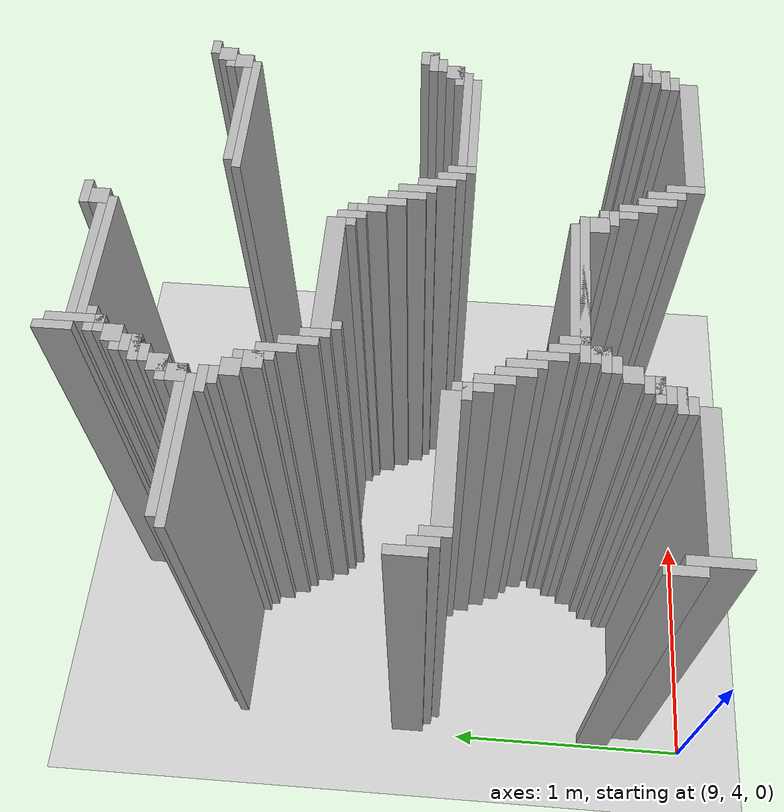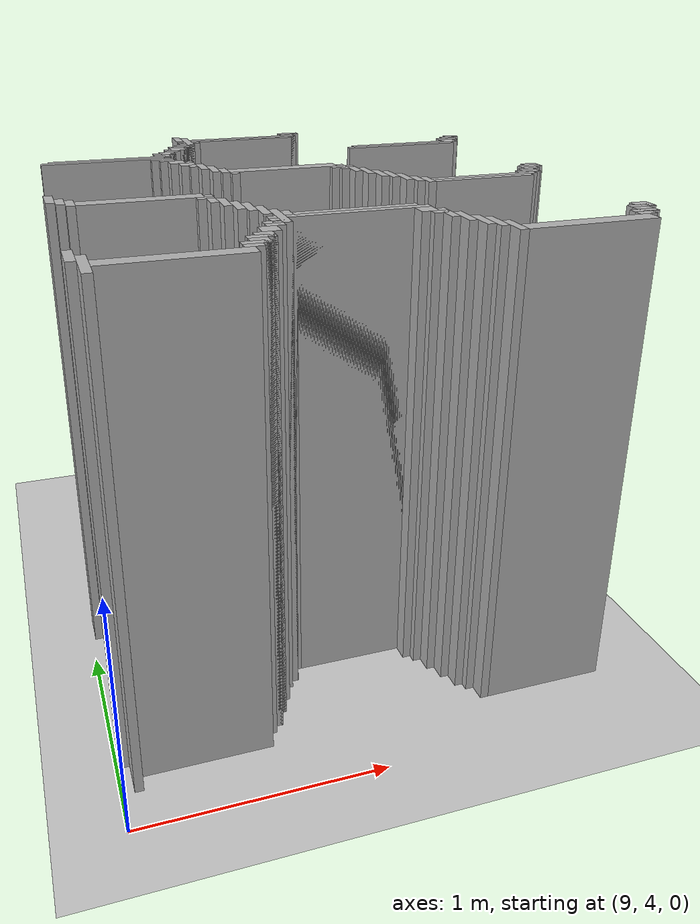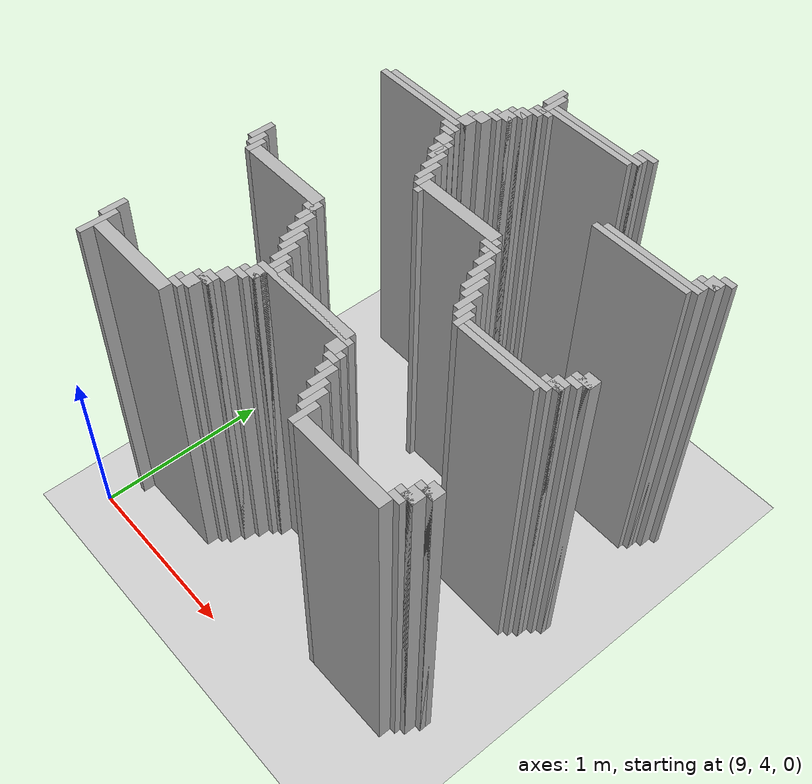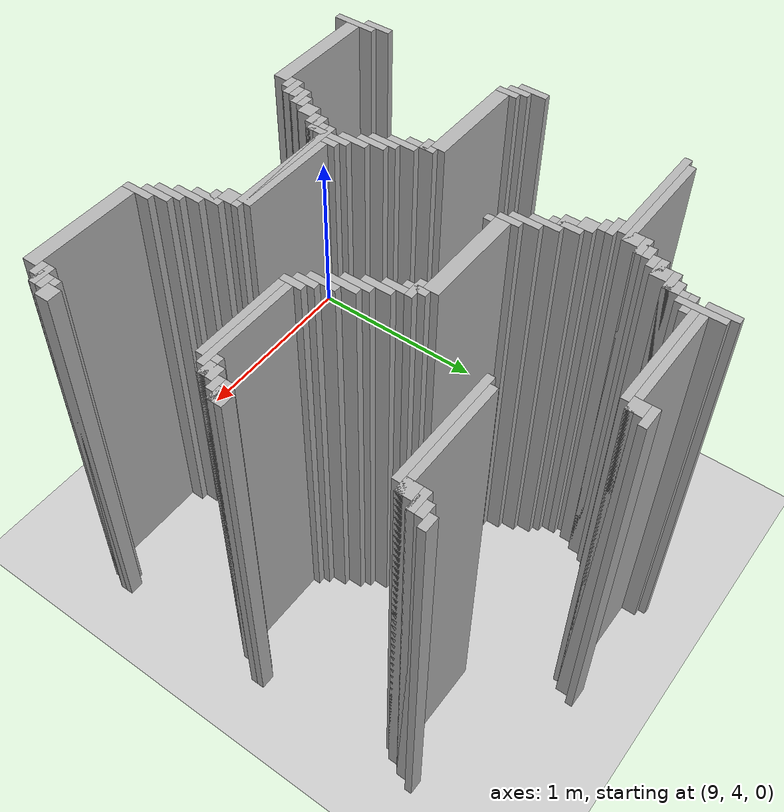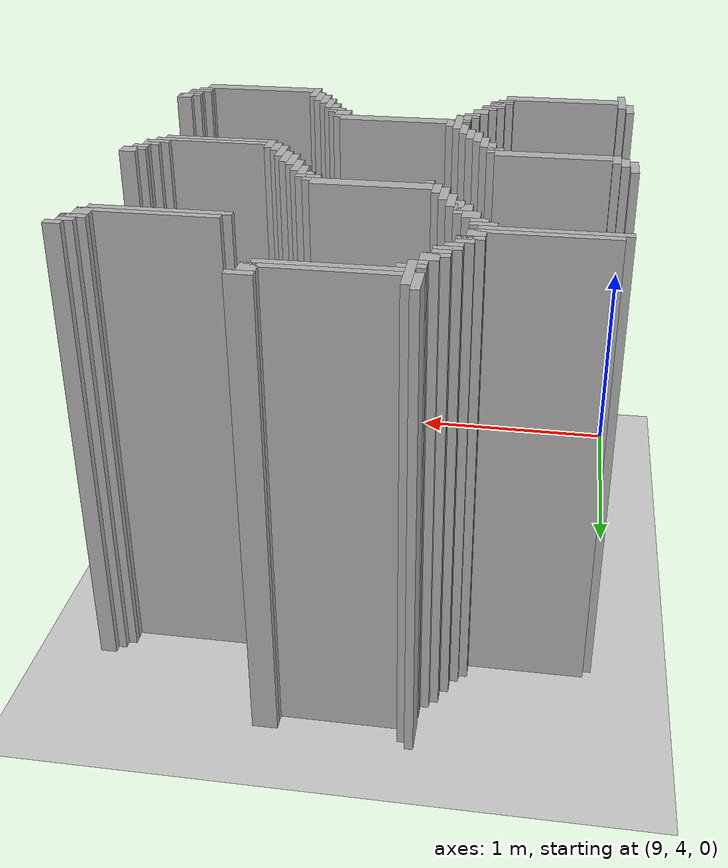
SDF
<sdf version="1.6">
 <world name="slam_world">
  <model name="ground_plane">
   <static>true</static>
   <link name="link">
    <collision name="collision">
     <geometry><plane><normal>0 0 1</normal><size>100 100</size></plane></geometry>
    </collision>
    <visual name="visual">
     <geometry><plane><normal>0 0 1</normal><size>100 100</size></plane></geometry>
     <material>
      <ambient>0.8 0.8 0.8 1</ambient>
      <diffuse>0.8 0.8 0.8 1</diffuse>
      <specular>0.8 0.8 0.8 1</specular>
     </material>
    </visual>
   </link>
  </model>
  <model name="wall_3559">
   <static>true</static>
   <pose>9.762180974477959 6.473317865429234 1.0 0 0 0</pose>
   <link name="link">
    <collision name="collision">
     <geometry><box><size>0.03480278422273782 0.13921113689095127 2.0</size></box></geometry>
    </collision>
    <visual name="visual">
     <geometry><box><size>0.03480278422273782 0.13921113689095127 2.0</size></box></geometry>
     <material><ambient>0.5 0.5 0.5 1</ambient><diffuse>0.7 0.7 0.7 1</diffuse></material>
    </visual>
   </link>
  </model>
  <model name="wall_3579">
   <static>true</static>
   <pose>9.796983758700696 6.403712296983758 1.0 0 0 0</pose>
   <link name="link">
    <collision name="collision">
     <geometry><box><size>0.03480278422273782 0.2088167053364269 2.0</size></box></geometry>
    </collision>
    <visual name="visual">
     <geometry><box><size>0.03480278422273782 0.2088167053364269 2.0</size></box></geometry>
     <material><ambient>0.5 0.5 0.5 1</ambient><diffuse>0.7 0.7 0.7 1</diffuse></material>
    </visual>
   </link>
  </model>
  <model name="wall_3580">
   <static>true</static>
   <pose>10.3538283062645 6.490719257540603 1.0 0 0 0</pose>
   <link name="link">
    <collision name="collision">
     <geometry><box><size>0.10440835266821345 0.03480278422273782 2.0</size></box></geometry>
    </collision>
    <visual name="visual">
     <geometry><box><size>0.10440835266821345 0.03480278422273782 2.0</size></box></geometry>
     <material><ambient>0.5 0.5 0.5 1</ambient><diffuse>0.7 0.7 0.7 1</diffuse></material>
    </visual>
   </link>
  </model>
  <model name="wall_3593">
   <static>true</static>
   <pose>10.336426914153131 6.438515081206496 1.0 0 0 0</pose>
   <link name="link">
    <collision name="collision">
     <geometry><box><size>0.06960556844547564 0.06960556844547564 2.0</size></box></geometry>
    </collision>
    <visual name="visual">
     <geometry><box><size>0.06960556844547564 0.06960556844547564 2.0</size></box></geometry>
     <material><ambient>0.5 0.5 0.5 1</ambient><diffuse>0.7 0.7 0.7 1</diffuse></material>
    </visual>
   </link>
  </model>
  <model name="wall_3606">
   <static>true</static>
   <pose>10.092807424593968 6.421113689095128 1.0 0 0 0</pose>
   <link name="link">
    <collision name="collision">
     <geometry><box><size>0.5568445475638051 0.03480278422273782 2.0</size></box></geometry>
    </collision>
    <visual name="visual">
     <geometry><box><size>0.5568445475638051 0.03480278422273782 2.0</size></box></geometry>
     <material><ambient>0.5 0.5 0.5 1</ambient><diffuse>0.7 0.7 0.7 1</diffuse></material>
    </visual>
   </link>
  </model>
  <model name="wall_3617">
   <static>true</static>
   <pose>10.075406032482599 6.386310904872389 1.0 0 0 0</pose>
   <link name="link">
    <collision name="collision">
     <geometry><box><size>0.5220417633410672 0.03480278422273782 2.0</size></box></geometry>
    </collision>
    <visual name="visual">
     <geometry><box><size>0.5220417633410672 0.03480278422273782 2.0</size></box></geometry>
     <material><ambient>0.5 0.5 0.5 1</ambient><diffuse>0.7 0.7 0.7 1</diffuse></material>
    </visual>
   </link>
  </model>
  <model name="wall_3627">
   <static>true</static>
   <pose>9.796983758700696 6.351508120649652 1.0 0 0 0</pose>
   <link name="link">
    <collision name="collision">
     <geometry><box><size>0.10440835266821345 0.03480278422273782 2.0</size></box></geometry>
    </collision>
    <visual name="visual">
     <geometry><box><size>0.10440835266821345 0.03480278422273782 2.0</size></box></geometry>
     <material><ambient>0.5 0.5 0.5 1</ambient><diffuse>0.7 0.7 0.7 1</diffuse></material>
    </visual>
   </link>
  </model>
  <model name="wall_3636">
   <static>true</static>
   <pose>9.779582366589327 6.316705336426914 1.0 0 0 0</pose>
   <link name="link">
    <collision name="collision">
     <geometry><box><size>0.06960556844547564 0.03480278422273782 2.0</size></box></geometry>
    </collision>
    <visual name="visual">
     <geometry><box><size>0.06960556844547564 0.03480278422273782 2.0</size></box></geometry>
     <material><ambient>0.5 0.5 0.5 1</ambient><diffuse>0.7 0.7 0.7 1</diffuse></material>
    </visual>
   </link>
  </model>
  <model name="wall_3649">
   <static>true</static>
   <pose>9.744779582366588 6.2645011600928076 1.0 0 0 0</pose>
   <link name="link">
    <collision name="collision">
     <geometry><box><size>0.06960556844547564 0.06960556844547564 2.0</size></box></geometry>
    </collision>
    <visual name="visual">
     <geometry><box><size>0.06960556844547564 0.06960556844547564 2.0</size></box></geometry>
     <material><ambient>0.5 0.5 0.5 1</ambient><diffuse>0.7 0.7 0.7 1</diffuse></material>
    </visual>
   </link>
  </model>
  <model name="wall_3662">
   <static>true</static>
   <pose>9.72737819025522 6.247099767981438 1.0 0 0 0</pose>
   <link name="link">
    <collision name="collision">
     <geometry><box><size>0.10440835266821345 0.03480278422273782 2.0</size></box></geometry>
    </collision>
    <visual name="visual">
     <geometry><box><size>0.10440835266821345 0.03480278422273782 2.0</size></box></geometry>
     <material><ambient>0.5 0.5 0.5 1</ambient><diffuse>0.7 0.7 0.7 1</diffuse></material>
    </visual>
   </link>
  </model>
  <model name="wall_3675">
   <static>true</static>
   <pose>9.70997679814385 6.194895591647332 1.0 0 0 0</pose>
   <link name="link">
    <collision name="collision">
     <geometry><box><size>0.06960556844547564 0.06960556844547564 2.0</size></box></geometry>
    </collision>
    <visual name="visual">
     <geometry><box><size>0.06960556844547564 0.06960556844547564 2.0</size></box></geometry>
     <material><ambient>0.5 0.5 0.5 1</ambient><diffuse>0.7 0.7 0.7 1</diffuse></material>
    </visual>
   </link>
  </model>
  <model name="wall_3688">
   <static>true</static>
   <pose>9.692575406032482 6.177494199535962 1.0 0 0 0</pose>
   <link name="link">
    <collision name="collision">
     <geometry><box><size>0.10440835266821345 0.03480278422273782 2.0</size></box></geometry>
    </collision>
    <visual name="visual">
     <geometry><box><size>0.10440835266821345 0.03480278422273782 2.0</size></box></geometry>
     <material><ambient>0.5 0.5 0.5 1</ambient><diffuse>0.7 0.7 0.7 1</diffuse></material>
    </visual>
   </link>
  </model>
  <model name="wall_3696">
   <static>true</static>
   <pose>9.675174013921113 6.142691415313225 1.0 0 0 0</pose>
   <link name="link">
    <collision name="collision">
     <geometry><box><size>0.06960556844547564 0.03480278422273782 2.0</size></box></geometry>
    </collision>
    <visual name="visual">
     <geometry><box><size>0.06960556844547564 0.03480278422273782 2.0</size></box></geometry>
     <material><ambient>0.5 0.5 0.5 1</ambient><diffuse>0.7 0.7 0.7 1</diffuse></material>
    </visual>
   </link>
  </model>
  <model name="wall_3697">
   <static>true</static>
   <pose>11.1368909512761 6.142691415313225 1.0 0 0 0</pose>
   <link name="link">
    <collision name="collision">
     <geometry><box><size>0.06960556844547564 0.03480278422273782 2.0</size></box></geometry>
    </collision>
    <visual name="visual">
     <geometry><box><size>0.06960556844547564 0.03480278422273782 2.0</size></box></geometry>
     <material><ambient>0.5 0.5 0.5 1</ambient><diffuse>0.7 0.7 0.7 1</diffuse></material>
    </visual>
   </link>
  </model>
  <model name="wall_3706">
   <static>true</static>
   <pose>9.640371229698376 6.090487238979118 1.0 0 0 0</pose>
   <link name="link">
    <collision name="collision">
     <geometry><box><size>0.06960556844547564 0.06960556844547564 2.0</size></box></geometry>
    </collision>
    <visual name="visual">
     <geometry><box><size>0.06960556844547564 0.06960556844547564 2.0</size></box></geometry>
     <material><ambient>0.5 0.5 0.5 1</ambient><diffuse>0.7 0.7 0.7 1</diffuse></material>
    </visual>
   </link>
  </model>
  <model name="wall_3707">
   <static>true</static>
   <pose>11.102088167053363 6.090487238979118 1.0 0 0 0</pose>
   <link name="link">
    <collision name="collision">
     <geometry><box><size>0.06960556844547564 0.06960556844547564 2.0</size></box></geometry>
    </collision>
    <visual name="visual">
     <geometry><box><size>0.06960556844547564 0.06960556844547564 2.0</size></box></geometry>
     <material><ambient>0.5 0.5 0.5 1</ambient><diffuse>0.7 0.7 0.7 1</diffuse></material>
    </visual>
   </link>
  </model>
  <model name="wall_3719">
   <static>true</static>
   <pose>9.622969837587007 6.073085846867749 1.0 0 0 0</pose>
   <link name="link">
    <collision name="collision">
     <geometry><box><size>0.10440835266821345 0.03480278422273782 2.0</size></box></geometry>
    </collision>
    <visual name="visual">
     <geometry><box><size>0.10440835266821345 0.03480278422273782 2.0</size></box></geometry>
     <material><ambient>0.5 0.5 0.5 1</ambient><diffuse>0.7 0.7 0.7 1</diffuse></material>
    </visual>
   </link>
  </model>
  <model name="wall_3720">
   <static>true</static>
   <pose>11.084686774941995 6.073085846867749 1.0 0 0 0</pose>
   <link name="link">
    <collision name="collision">
     <geometry><box><size>0.10440835266821345 0.03480278422273782 2.0</size></box></geometry>
    </collision>
    <visual name="visual">
     <geometry><box><size>0.10440835266821345 0.03480278422273782 2.0</size></box></geometry>
     <material><ambient>0.5 0.5 0.5 1</ambient><diffuse>0.7 0.7 0.7 1</diffuse></material>
    </visual>
   </link>
  </model>
  <model name="wall_3727">
   <static>true</static>
   <pose>9.605568445475638 6.020881670533642 1.0 0 0 0</pose>
   <link name="link">
    <collision name="collision">
     <geometry><box><size>0.06960556844547564 0.06960556844547564 2.0</size></box></geometry>
    </collision>
    <visual name="visual">
     <geometry><box><size>0.06960556844547564 0.06960556844547564 2.0</size></box></geometry>
     <material><ambient>0.5 0.5 0.5 1</ambient><diffuse>0.7 0.7 0.7 1</diffuse></material>
    </visual>
   </link>
  </model>
  <model name="wall_3728">
   <static>true</static>
   <pose>11.067285382830626 6.020881670533642 1.0 0 0 0</pose>
   <link name="link">
    <collision name="collision">
     <geometry><box><size>0.06960556844547564 0.06960556844547564 2.0</size></box></geometry>
    </collision>
    <visual name="visual">
     <geometry><box><size>0.06960556844547564 0.06960556844547564 2.0</size></box></geometry>
     <material><ambient>0.5 0.5 0.5 1</ambient><diffuse>0.7 0.7 0.7 1</diffuse></material>
    </visual>
   </link>
  </model>
  <model name="wall_3737">
   <static>true</static>
   <pose>9.361948955916473 6.003480278422273 1.0 0 0 0</pose>
   <link name="link">
    <collision name="collision">
     <geometry><box><size>0.5568445475638051 0.03480278422273782 2.0</size></box></geometry>
    </collision>
    <visual name="visual">
     <geometry><box><size>0.5568445475638051 0.03480278422273782 2.0</size></box></geometry>
     <material><ambient>0.5 0.5 0.5 1</ambient><diffuse>0.7 0.7 0.7 1</diffuse></material>
    </visual>
   </link>
  </model>
  <model name="wall_3738">
   <static>true</static>
   <pose>10.82366589327146 6.003480278422273 1.0 0 0 0</pose>
   <link name="link">
    <collision name="collision">
     <geometry><box><size>0.5568445475638051 0.03480278422273782 2.0</size></box></geometry>
    </collision>
    <visual name="visual">
     <geometry><box><size>0.5568445475638051 0.03480278422273782 2.0</size></box></geometry>
     <material><ambient>0.5 0.5 0.5 1</ambient><diffuse>0.7 0.7 0.7 1</diffuse></material>
    </visual>
   </link>
  </model>
  <model name="wall_3748">
   <static>true</static>
   <pose>9.327146171693736 5.968677494199536 1.0 0 0 0</pose>
   <link name="link">
    <collision name="collision">
     <geometry><box><size>0.5568445475638051 0.03480278422273782 2.0</size></box></geometry>
    </collision>
    <visual name="visual">
     <geometry><box><size>0.5568445475638051 0.03480278422273782 2.0</size></box></geometry>
     <material><ambient>0.5 0.5 0.5 1</ambient><diffuse>0.7 0.7 0.7 1</diffuse></material>
    </visual>
   </link>
  </model>
  <model name="wall_3749">
   <static>true</static>
   <pose>10.788863109048723 5.968677494199536 1.0 0 0 0</pose>
   <link name="link">
    <collision name="collision">
     <geometry><box><size>0.5568445475638051 0.03480278422273782 2.0</size></box></geometry>
    </collision>
    <visual name="visual">
     <geometry><box><size>0.5568445475638051 0.03480278422273782 2.0</size></box></geometry>
     <material><ambient>0.5 0.5 0.5 1</ambient><diffuse>0.7 0.7 0.7 1</diffuse></material>
    </visual>
   </link>
  </model>
  <model name="wall_3761">
   <static>true</static>
   <pose>9.588167053364268 5.933874709976798 1.0 0 0 0</pose>
   <link name="link">
    <collision name="collision">
     <geometry><box><size>0.10440835266821345 0.03480278422273782 2.0</size></box></geometry>
    </collision>
    <visual name="visual">
     <geometry><box><size>0.10440835266821345 0.03480278422273782 2.0</size></box></geometry>
     <material><ambient>0.5 0.5 0.5 1</ambient><diffuse>0.7 0.7 0.7 1</diffuse></material>
    </visual>
   </link>
  </model>
  <model name="wall_3768">
   <static>true</static>
   <pose>9.605568445475638 5.89907192575406 1.0 0 0 0</pose>
   <link name="link">
    <collision name="collision">
     <geometry><box><size>0.06960556844547564 0.03480278422273782 2.0</size></box></geometry>
    </collision>
    <visual name="visual">
     <geometry><box><size>0.06960556844547564 0.03480278422273782 2.0</size></box></geometry>
     <material><ambient>0.5 0.5 0.5 1</ambient><diffuse>0.7 0.7 0.7 1</diffuse></material>
    </visual>
   </link>
  </model>
  <model name="wall_3780">
   <static>true</static>
   <pose>9.640371229698376 5.846867749419953 1.0 0 0 0</pose>
   <link name="link">
    <collision name="collision">
     <geometry><box><size>0.06960556844547564 0.06960556844547564 2.0</size></box></geometry>
    </collision>
    <visual name="visual">
     <geometry><box><size>0.06960556844547564 0.06960556844547564 2.0</size></box></geometry>
     <material><ambient>0.5 0.5 0.5 1</ambient><diffuse>0.7 0.7 0.7 1</diffuse></material>
    </visual>
   </link>
  </model>
  <model name="wall_3793">
   <static>true</static>
   <pose>9.692575406032482 5.7772621809744775 1.0 0 0 0</pose>
   <link name="link">
    <collision name="collision">
     <geometry><box><size>0.03480278422273782 0.13921113689095127 2.0</size></box></geometry>
    </collision>
    <visual name="visual">
     <geometry><box><size>0.03480278422273782 0.13921113689095127 2.0</size></box></geometry>
     <material><ambient>0.5 0.5 0.5 1</ambient><diffuse>0.7 0.7 0.7 1</diffuse></material>
    </visual>
   </link>
  </model>
  <model name="wall_3806">
   <static>true</static>
   <pose>9.675174013921113 5.7772621809744775 1.0 0 0 0</pose>
   <link name="link">
    <collision name="collision">
     <geometry><box><size>0.06960556844547564 0.06960556844547564 2.0</size></box></geometry>
    </collision>
    <visual name="visual">
     <geometry><box><size>0.06960556844547564 0.06960556844547564 2.0</size></box></geometry>
     <material><ambient>0.5 0.5 0.5 1</ambient><diffuse>0.7 0.7 0.7 1</diffuse></material>
    </visual>
   </link>
  </model>
  <model name="wall_3818">
   <static>true</static>
   <pose>9.72737819025522 5.707656612529002 1.0 0 0 0</pose>
   <link name="link">
    <collision name="collision">
     <geometry><box><size>0.03480278422273782 0.13921113689095127 2.0</size></box></geometry>
    </collision>
    <visual name="visual">
     <geometry><box><size>0.03480278422273782 0.13921113689095127 2.0</size></box></geometry>
     <material><ambient>0.5 0.5 0.5 1</ambient><diffuse>0.7 0.7 0.7 1</diffuse></material>
    </visual>
   </link>
  </model>
  <model name="wall_3837">
   <static>true</static>
   <pose>9.762180974477959 5.638051044083526 1.0 0 0 0</pose>
   <link name="link">
    <collision name="collision">
     <geometry><box><size>0.03480278422273782 0.13921113689095127 2.0</size></box></geometry>
    </collision>
    <visual name="visual">
     <geometry><box><size>0.03480278422273782 0.13921113689095127 2.0</size></box></geometry>
     <material><ambient>0.5 0.5 0.5 1</ambient><diffuse>0.7 0.7 0.7 1</diffuse></material>
    </visual>
   </link>
  </model>
  <model name="wall_3850">
   <static>true</static>
   <pose>9.796983758700696 5.58584686774942 1.0 0 0 0</pose>
   <link name="link">
    <collision name="collision">
     <geometry><box><size>0.03480278422273782 0.10440835266821345 2.0</size></box></geometry>
    </collision>
    <visual name="visual">
     <geometry><box><size>0.03480278422273782 0.10440835266821345 2.0</size></box></geometry>
     <material><ambient>0.5 0.5 0.5 1</ambient><diffuse>0.7 0.7 0.7 1</diffuse></material>
    </visual>
   </link>
  </model>
  <model name="wall_3863">
   <static>true</static>
   <pose>10.058004640371228 5.56844547563805 1.0 0 0 0</pose>
   <link name="link">
    <collision name="collision">
     <geometry><box><size>0.4872389791183295 0.06960556844547564 2.0</size></box></geometry>
    </collision>
    <visual name="visual">
     <geometry><box><size>0.4872389791183295 0.06960556844547564 2.0</size></box></geometry>
     <material><ambient>0.5 0.5 0.5 1</ambient><diffuse>0.7 0.7 0.7 1</diffuse></material>
    </visual>
   </link>
  </model>
  <model name="wall_3875">
   <static>true</static>
   <pose>10.319025522041763 5.516241299303944 1.0 0 0 0</pose>
   <link name="link">
    <collision name="collision">
     <geometry><box><size>0.03480278422273782 0.10440835266821345 2.0</size></box></geometry>
    </collision>
    <visual name="visual">
     <geometry><box><size>0.03480278422273782 0.10440835266821345 2.0</size></box></geometry>
     <material><ambient>0.5 0.5 0.5 1</ambient><diffuse>0.7 0.7 0.7 1</diffuse></material>
    </visual>
   </link>
  </model>
  <model name="wall_3888">
   <static>true</static>
   <pose>9.831786542923433 5.516241299303944 1.0 0 0 0</pose>
   <link name="link">
    <collision name="collision">
     <geometry><box><size>0.03480278422273782 0.03480278422273782 2.0</size></box></geometry>
    </collision>
    <visual name="visual">
     <geometry><box><size>0.03480278422273782 0.03480278422273782 2.0</size></box></geometry>
     <material><ambient>0.5 0.5 0.5 1</ambient><diffuse>0.7 0.7 0.7 1</diffuse></material>
    </visual>
   </link>
  </model>
  <model name="wall_3889">
   <static>true</static>
   <pose>10.319025522041763 5.516241299303944 1.0 0 0 0</pose>
   <link name="link">
    <collision name="collision">
     <geometry><box><size>0.10440835266821345 0.03480278422273782 2.0</size></box></geometry>
    </collision>
    <visual name="visual">
     <geometry><box><size>0.10440835266821345 0.03480278422273782 2.0</size></box></geometry>
     <material><ambient>0.5 0.5 0.5 1</ambient><diffuse>0.7 0.7 0.7 1</diffuse></material>
    </visual>
   </link>
  </model>
  <model name="wall_3902">
   <static>true</static>
   <pose>10.3538283062645 5.4466357308584685 1.0 0 0 0</pose>
   <link name="link">
    <collision name="collision">
     <geometry><box><size>0.03480278422273782 0.10440835266821345 2.0</size></box></geometry>
    </collision>
    <visual name="visual">
     <geometry><box><size>0.03480278422273782 0.10440835266821345 2.0</size></box></geometry>
     <material><ambient>0.5 0.5 0.5 1</ambient><diffuse>0.7 0.7 0.7 1</diffuse></material>
    </visual>
   </link>
  </model>
  <model name="wall_3915">
   <static>true</static>
   <pose>10.38863109048724 5.3944315545243615 1.0 0 0 0</pose>
   <link name="link">
    <collision name="collision">
     <geometry><box><size>0.03480278422273782 0.13921113689095127 2.0</size></box></geometry>
    </collision>
    <visual name="visual">
     <geometry><box><size>0.03480278422273782 0.13921113689095127 2.0</size></box></geometry>
     <material><ambient>0.5 0.5 0.5 1</ambient><diffuse>0.7 0.7 0.7 1</diffuse></material>
    </visual>
   </link>
  </model>
  <model name="wall_3928">
   <static>true</static>
   <pose>10.423433874709977 5.324825986078886 1.0 0 0 0</pose>
   <link name="link">
    <collision name="collision">
     <geometry><box><size>0.03480278422273782 0.13921113689095127 2.0</size></box></geometry>
    </collision>
    <visual name="visual">
     <geometry><box><size>0.03480278422273782 0.13921113689095127 2.0</size></box></geometry>
     <material><ambient>0.5 0.5 0.5 1</ambient><diffuse>0.7 0.7 0.7 1</diffuse></material>
    </visual>
   </link>
  </model>
  <model name="wall_3941">
   <static>true</static>
   <pose>10.458236658932714 5.290023201856148 1.0 0 0 0</pose>
   <link name="link">
    <collision name="collision">
     <geometry><box><size>0.03480278422273782 0.13921113689095127 2.0</size></box></geometry>
    </collision>
    <visual name="visual">
     <geometry><box><size>0.03480278422273782 0.13921113689095127 2.0</size></box></geometry>
     <material><ambient>0.5 0.5 0.5 1</ambient><diffuse>0.7 0.7 0.7 1</diffuse></material>
    </visual>
   </link>
  </model>
  <model name="wall_3951">
   <static>true</static>
   <pose>11.1368909512761 5.290023201856148 1.0 0 0 0</pose>
   <link name="link">
    <collision name="collision">
     <geometry><box><size>0.06960556844547564 0.06960556844547564 2.0</size></box></geometry>
    </collision>
    <visual name="visual">
     <geometry><box><size>0.06960556844547564 0.06960556844547564 2.0</size></box></geometry>
     <material><ambient>0.5 0.5 0.5 1</ambient><diffuse>0.7 0.7 0.7 1</diffuse></material>
    </visual>
   </link>
  </model>
  <model name="wall_3961">
   <static>true</static>
   <pose>9.031322505800464 5.220417633410673 1.0 0 0 0</pose>
   <link name="link">
    <collision name="collision">
     <geometry><box><size>0.03480278422273782 0.13921113689095127 2.0</size></box></geometry>
    </collision>
    <visual name="visual">
     <geometry><box><size>0.03480278422273782 0.13921113689095127 2.0</size></box></geometry>
     <material><ambient>0.5 0.5 0.5 1</ambient><diffuse>0.7 0.7 0.7 1</diffuse></material>
    </visual>
   </link>
  </model>
  <model name="wall_3962">
   <static>true</static>
   <pose>10.493039443155451 5.220417633410673 1.0 0 0 0</pose>
   <link name="link">
    <collision name="collision">
     <geometry><box><size>0.03480278422273782 0.13921113689095127 2.0</size></box></geometry>
    </collision>
    <visual name="visual">
     <geometry><box><size>0.03480278422273782 0.13921113689095127 2.0</size></box></geometry>
     <material><ambient>0.5 0.5 0.5 1</ambient><diffuse>0.7 0.7 0.7 1</diffuse></material>
    </visual>
   </link>
  </model>
  <model name="wall_3963">
   <static>true</static>
   <pose>11.119489559164732 5.27262180974478 1.0 0 0 0</pose>
   <link name="link">
    <collision name="collision">
     <geometry><box><size>0.10440835266821345 0.03480278422273782 2.0</size></box></geometry>
    </collision>
    <visual name="visual">
     <geometry><box><size>0.10440835266821345 0.03480278422273782 2.0</size></box></geometry>
     <material><ambient>0.5 0.5 0.5 1</ambient><diffuse>0.7 0.7 0.7 1</diffuse></material>
    </visual>
   </link>
  </model>
  <model name="wall_3971">
   <static>true</static>
   <pose>11.102088167053363 5.237819025522041 1.0 0 0 0</pose>
   <link name="link">
    <collision name="collision">
     <geometry><box><size>0.06960556844547564 0.03480278422273782 2.0</size></box></geometry>
    </collision>
    <visual name="visual">
     <geometry><box><size>0.06960556844547564 0.03480278422273782 2.0</size></box></geometry>
     <material><ambient>0.5 0.5 0.5 1</ambient><diffuse>0.7 0.7 0.7 1</diffuse></material>
    </visual>
   </link>
  </model>
  <model name="wall_3981">
   <static>true</static>
   <pose>9.066125290023201 5.168213457076566 1.0 0 0 0</pose>
   <link name="link">
    <collision name="collision">
     <geometry><box><size>0.03480278422273782 0.10440835266821345 2.0</size></box></geometry>
    </collision>
    <visual name="visual">
     <geometry><box><size>0.03480278422273782 0.10440835266821345 2.0</size></box></geometry>
     <material><ambient>0.5 0.5 0.5 1</ambient><diffuse>0.7 0.7 0.7 1</diffuse></material>
    </visual>
   </link>
  </model>
  <model name="wall_3982">
   <static>true</static>
   <pose>10.52784222737819 5.168213457076566 1.0 0 0 0</pose>
   <link name="link">
    <collision name="collision">
     <geometry><box><size>0.03480278422273782 0.10440835266821345 2.0</size></box></geometry>
    </collision>
    <visual name="visual">
     <geometry><box><size>0.03480278422273782 0.10440835266821345 2.0</size></box></geometry>
     <material><ambient>0.5 0.5 0.5 1</ambient><diffuse>0.7 0.7 0.7 1</diffuse></material>
    </visual>
   </link>
  </model>
  <model name="wall_3983">
   <static>true</static>
   <pose>11.067285382830626 5.185614849187935 1.0 0 0 0</pose>
   <link name="link">
    <collision name="collision">
     <geometry><box><size>0.06960556844547564 0.06960556844547564 2.0</size></box></geometry>
    </collision>
    <visual name="visual">
     <geometry><box><size>0.06960556844547564 0.06960556844547564 2.0</size></box></geometry>
     <material><ambient>0.5 0.5 0.5 1</ambient><diffuse>0.7 0.7 0.7 1</diffuse></material>
    </visual>
   </link>
  </model>
  <model name="wall_3994">
   <static>true</static>
   <pose>9.100928074245939 5.133410672853828 1.0 0 0 0</pose>
   <link name="link">
    <collision name="collision">
     <geometry><box><size>0.03480278422273782 0.10440835266821345 2.0</size></box></geometry>
    </collision>
    <visual name="visual">
     <geometry><box><size>0.03480278422273782 0.10440835266821345 2.0</size></box></geometry>
     <material><ambient>0.5 0.5 0.5 1</ambient><diffuse>0.7 0.7 0.7 1</diffuse></material>
    </visual>
   </link>
  </model>
  <model name="wall_3995">
   <static>true</static>
   <pose>10.562645011600928 5.133410672853828 1.0 0 0 0</pose>
   <link name="link">
    <collision name="collision">
     <geometry><box><size>0.03480278422273782 0.10440835266821345 2.0</size></box></geometry>
    </collision>
    <visual name="visual">
     <geometry><box><size>0.03480278422273782 0.10440835266821345 2.0</size></box></geometry>
     <material><ambient>0.5 0.5 0.5 1</ambient><diffuse>0.7 0.7 0.7 1</diffuse></material>
    </visual>
   </link>
  </model>
  <model name="wall_3996">
   <static>true</static>
   <pose>11.049883990719257 5.168213457076566 1.0 0 0 0</pose>
   <link name="link">
    <collision name="collision">
     <geometry><box><size>0.10440835266821345 0.03480278422273782 2.0</size></box></geometry>
    </collision>
    <visual name="visual">
     <geometry><box><size>0.10440835266821345 0.03480278422273782 2.0</size></box></geometry>
     <material><ambient>0.5 0.5 0.5 1</ambient><diffuse>0.7 0.7 0.7 1</diffuse></material>
    </visual>
   </link>
  </model>
  <model name="wall_4006">
   <static>true</static>
   <pose>9.361948955916473 5.1160092807424595 1.0 0 0 0</pose>
   <link name="link">
    <collision name="collision">
     <geometry><box><size>0.4872389791183295 0.06960556844547564 2.0</size></box></geometry>
    </collision>
    <visual name="visual">
     <geometry><box><size>0.4872389791183295 0.06960556844547564 2.0</size></box></geometry>
     <material><ambient>0.5 0.5 0.5 1</ambient><diffuse>0.7 0.7 0.7 1</diffuse></material>
    </visual>
   </link>
  </model>
  <model name="wall_4007">
   <static>true</static>
   <pose>10.82366589327146 5.133410672853828 1.0 0 0 0</pose>
   <link name="link">
    <collision name="collision">
     <geometry><box><size>0.4872389791183295 0.03480278422273782 2.0</size></box></geometry>
    </collision>
    <visual name="visual">
     <geometry><box><size>0.4872389791183295 0.03480278422273782 2.0</size></box></geometry>
     <material><ambient>0.5 0.5 0.5 1</ambient><diffuse>0.7 0.7 0.7 1</diffuse></material>
    </visual>
   </link>
  </model>
  <model name="wall_4017">
   <static>true</static>
   <pose>9.622969837587007 5.046403712296984 1.0 0 0 0</pose>
   <link name="link">
    <collision name="collision">
     <geometry><box><size>0.03480278422273782 0.13921113689095127 2.0</size></box></geometry>
    </collision>
    <visual name="visual">
     <geometry><box><size>0.03480278422273782 0.13921113689095127 2.0</size></box></geometry>
     <material><ambient>0.5 0.5 0.5 1</ambient><diffuse>0.7 0.7 0.7 1</diffuse></material>
    </visual>
   </link>
  </model>
  <model name="wall_4018">
   <static>true</static>
   <pose>10.806264501160092 5.09860788863109 1.0 0 0 0</pose>
   <link name="link">
    <collision name="collision">
     <geometry><box><size>0.4524361948955916 0.03480278422273782 2.0</size></box></geometry>
    </collision>
    <visual name="visual">
     <geometry><box><size>0.4524361948955916 0.03480278422273782 2.0</size></box></geometry>
     <material><ambient>0.5 0.5 0.5 1</ambient><diffuse>0.7 0.7 0.7 1</diffuse></material>
    </visual>
   </link>
  </model>
  <model name="wall_4034">
   <static>true</static>
   <pose>9.605568445475638 5.0638051044083525 1.0 0 0 0</pose>
   <link name="link">
    <collision name="collision">
     <geometry><box><size>0.06960556844547564 0.03480278422273782 2.0</size></box></geometry>
    </collision>
    <visual name="visual">
     <geometry><box><size>0.06960556844547564 0.03480278422273782 2.0</size></box></geometry>
     <material><ambient>0.5 0.5 0.5 1</ambient><diffuse>0.7 0.7 0.7 1</diffuse></material>
    </visual>
   </link>
  </model>
  <model name="wall_4049">
   <static>true</static>
   <pose>9.657772621809745 4.976798143851508 1.0 0 0 0</pose>
   <link name="link">
    <collision name="collision">
     <geometry><box><size>0.03480278422273782 0.13921113689095127 2.0</size></box></geometry>
    </collision>
    <visual name="visual">
     <geometry><box><size>0.03480278422273782 0.13921113689095127 2.0</size></box></geometry>
     <material><ambient>0.5 0.5 0.5 1</ambient><diffuse>0.7 0.7 0.7 1</diffuse></material>
    </visual>
   </link>
  </model>
  <model name="wall_4064">
   <static>true</static>
   <pose>9.692575406032482 4.907192575406032 1.0 0 0 0</pose>
   <link name="link">
    <collision name="collision">
     <geometry><box><size>0.03480278422273782 0.13921113689095127 2.0</size></box></geometry>
    </collision>
    <visual name="visual">
     <geometry><box><size>0.03480278422273782 0.13921113689095127 2.0</size></box></geometry>
     <material><ambient>0.5 0.5 0.5 1</ambient><diffuse>0.7 0.7 0.7 1</diffuse></material>
    </visual>
   </link>
  </model>
  <model name="wall_4079">
   <static>true</static>
   <pose>9.72737819025522 4.872389791183294 1.0 0 0 0</pose>
   <link name="link">
    <collision name="collision">
     <geometry><box><size>0.03480278422273782 0.13921113689095127 2.0</size></box></geometry>
    </collision>
    <visual name="visual">
     <geometry><box><size>0.03480278422273782 0.13921113689095127 2.0</size></box></geometry>
     <material><ambient>0.5 0.5 0.5 1</ambient><diffuse>0.7 0.7 0.7 1</diffuse></material>
    </visual>
   </link>
  </model>
  <model name="wall_4107">
   <static>true</static>
   <pose>9.762180974477959 4.802784222737819 1.0 0 0 0</pose>
   <link name="link">
    <collision name="collision">
     <geometry><box><size>0.03480278422273782 0.13921113689095127 2.0</size></box></geometry>
    </collision>
    <visual name="visual">
     <geometry><box><size>0.03480278422273782 0.13921113689095127 2.0</size></box></geometry>
     <material><ambient>0.5 0.5 0.5 1</ambient><diffuse>0.7 0.7 0.7 1</diffuse></material>
    </visual>
   </link>
  </model>
  <model name="wall_4130">
   <static>true</static>
   <pose>9.796983758700696 4.698375870069605 1.0 0 0 0</pose>
   <link name="link">
    <collision name="collision">
     <geometry><box><size>0.03480278422273782 0.2088167053364269 2.0</size></box></geometry>
    </collision>
    <visual name="visual">
     <geometry><box><size>0.03480278422273782 0.2088167053364269 2.0</size></box></geometry>
     <material><ambient>0.5 0.5 0.5 1</ambient><diffuse>0.7 0.7 0.7 1</diffuse></material>
    </visual>
   </link>
  </model>
  <model name="wall_4144">
   <static>true</static>
   <pose>9.831786542923433 4.715777262180974 1.0 0 0 0</pose>
   <link name="link">
    <collision name="collision">
     <geometry><box><size>0.03480278422273782 0.10440835266821345 2.0</size></box></geometry>
    </collision>
    <visual name="visual">
     <geometry><box><size>0.03480278422273782 0.10440835266821345 2.0</size></box></geometry>
     <material><ambient>0.5 0.5 0.5 1</ambient><diffuse>0.7 0.7 0.7 1</diffuse></material>
    </visual>
   </link>
  </model>
  <model name="wall_4154">
   <static>true</static>
   <pose>10.092807424593968 4.698375870069605 1.0 0 0 0</pose>
   <link name="link">
    <collision name="collision">
     <geometry><box><size>0.4872389791183295 0.06960556844547564 2.0</size></box></geometry>
    </collision>
    <visual name="visual">
     <geometry><box><size>0.4872389791183295 0.06960556844547564 2.0</size></box></geometry>
     <material><ambient>0.5 0.5 0.5 1</ambient><diffuse>0.7 0.7 0.7 1</diffuse></material>
    </visual>
   </link>
  </model>
  <model name="wall_4168">
   <static>true</static>
   <pose>10.058004640371228 4.6809744779582365 1.0 0 0 0</pose>
   <link name="link">
    <collision name="collision">
     <geometry><box><size>0.6264501160092807 0.03480278422273782 2.0</size></box></geometry>
    </collision>
    <visual name="visual">
     <geometry><box><size>0.6264501160092807 0.03480278422273782 2.0</size></box></geometry>
     <material><ambient>0.5 0.5 0.5 1</ambient><diffuse>0.7 0.7 0.7 1</diffuse></material>
    </visual>
   </link>
  </model>
  <model name="wall_4182">
   <static>true</static>
   <pose>9.779582366589327 4.6287703016241295 1.0 0 0 0</pose>
   <link name="link">
    <collision name="collision">
     <geometry><box><size>0.06960556844547564 0.06960556844547564 2.0</size></box></geometry>
    </collision>
    <visual name="visual">
     <geometry><box><size>0.06960556844547564 0.06960556844547564 2.0</size></box></geometry>
     <material><ambient>0.5 0.5 0.5 1</ambient><diffuse>0.7 0.7 0.7 1</diffuse></material>
    </visual>
   </link>
  </model>
  <model name="wall_4183">
   <static>true</static>
   <pose>10.336426914153131 4.6287703016241295 1.0 0 0 0</pose>
   <link name="link">
    <collision name="collision">
     <geometry><box><size>0.06960556844547564 0.06960556844547564 2.0</size></box></geometry>
    </collision>
    <visual name="visual">
     <geometry><box><size>0.06960556844547564 0.06960556844547564 2.0</size></box></geometry>
     <material><ambient>0.5 0.5 0.5 1</ambient><diffuse>0.7 0.7 0.7 1</diffuse></material>
    </visual>
   </link>
  </model>
  <model name="wall_4197">
   <static>true</static>
   <pose>9.762180974477959 4.611368909512761 1.0 0 0 0</pose>
   <link name="link">
    <collision name="collision">
     <geometry><box><size>0.10440835266821345 0.03480278422273782 2.0</size></box></geometry>
    </collision>
    <visual name="visual">
     <geometry><box><size>0.10440835266821345 0.03480278422273782 2.0</size></box></geometry>
     <material><ambient>0.5 0.5 0.5 1</ambient><diffuse>0.7 0.7 0.7 1</diffuse></material>
    </visual>
   </link>
  </model>
  <model name="wall_4198">
   <static>true</static>
   <pose>10.38863109048724 4.559164733178654 1.0 0 0 0</pose>
   <link name="link">
    <collision name="collision">
     <geometry><box><size>0.03480278422273782 0.13921113689095127 2.0</size></box></geometry>
    </collision>
    <visual name="visual">
     <geometry><box><size>0.03480278422273782 0.13921113689095127 2.0</size></box></geometry>
     <material><ambient>0.5 0.5 0.5 1</ambient><diffuse>0.7 0.7 0.7 1</diffuse></material>
    </visual>
   </link>
  </model>
  <model name="wall_4206">
   <static>true</static>
   <pose>9.744779582366588 4.576566125290023 1.0 0 0 0</pose>
   <link name="link">
    <collision name="collision">
     <geometry><box><size>0.06960556844547564 0.03480278422273782 2.0</size></box></geometry>
    </collision>
    <visual name="visual">
     <geometry><box><size>0.06960556844547564 0.03480278422273782 2.0</size></box></geometry>
     <material><ambient>0.5 0.5 0.5 1</ambient><diffuse>0.7 0.7 0.7 1</diffuse></material>
    </visual>
   </link>
  </model>
  <model name="wall_4207">
   <static>true</static>
   <pose>10.37122969837587 4.576566125290023 1.0 0 0 0</pose>
   <link name="link">
    <collision name="collision">
     <geometry><box><size>0.06960556844547564 0.03480278422273782 2.0</size></box></geometry>
    </collision>
    <visual name="visual">
     <geometry><box><size>0.06960556844547564 0.03480278422273782 2.0</size></box></geometry>
     <material><ambient>0.5 0.5 0.5 1</ambient><diffuse>0.7 0.7 0.7 1</diffuse></material>
    </visual>
   </link>
  </model>
  <model name="wall_4219">
   <static>true</static>
   <pose>9.70997679814385 4.524361948955916 1.0 0 0 0</pose>
   <link name="link">
    <collision name="collision">
     <geometry><box><size>0.06960556844547564 0.06960556844547564 2.0</size></box></geometry>
    </collision>
    <visual name="visual">
     <geometry><box><size>0.06960556844547564 0.06960556844547564 2.0</size></box></geometry>
     <material><ambient>0.5 0.5 0.5 1</ambient><diffuse>0.7 0.7 0.7 1</diffuse></material>
    </visual>
   </link>
  </model>
  <model name="wall_4220">
   <static>true</static>
   <pose>10.423433874709977 4.489559164733178 1.0 0 0 0</pose>
   <link name="link">
    <collision name="collision">
     <geometry><box><size>0.03480278422273782 0.13921113689095127 2.0</size></box></geometry>
    </collision>
    <visual name="visual">
     <geometry><box><size>0.03480278422273782 0.13921113689095127 2.0</size></box></geometry>
     <material><ambient>0.5 0.5 0.5 1</ambient><diffuse>0.7 0.7 0.7 1</diffuse></material>
    </visual>
   </link>
  </model>
  <model name="wall_4234">
   <static>true</static>
   <pose>9.675174013921113 4.454756380510441 1.0 0 0 0</pose>
   <link name="link">
    <collision name="collision">
     <geometry><box><size>0.06960556844547564 0.06960556844547564 2.0</size></box></geometry>
    </collision>
    <visual name="visual">
     <geometry><box><size>0.06960556844547564 0.06960556844547564 2.0</size></box></geometry>
     <material><ambient>0.5 0.5 0.5 1</ambient><diffuse>0.7 0.7 0.7 1</diffuse></material>
    </visual>
   </link>
  </model>
  <model name="wall_4235">
   <static>true</static>
   <pose>10.458236658932714 4.419953596287703 1.0 0 0 0</pose>
   <link name="link">
    <collision name="collision">
     <geometry><box><size>0.03480278422273782 0.13921113689095127 2.0</size></box></geometry>
    </collision>
    <visual name="visual">
     <geometry><box><size>0.03480278422273782 0.13921113689095127 2.0</size></box></geometry>
     <material><ambient>0.5 0.5 0.5 1</ambient><diffuse>0.7 0.7 0.7 1</diffuse></material>
    </visual>
   </link>
  </model>
  <model name="wall_4236">
   <static>true</static>
   <pose>11.1368909512761 4.454756380510441 1.0 0 0 0</pose>
   <link name="link">
    <collision name="collision">
     <geometry><box><size>0.06960556844547564 0.06960556844547564 2.0</size></box></geometry>
    </collision>
    <visual name="visual">
     <geometry><box><size>0.06960556844547564 0.06960556844547564 2.0</size></box></geometry>
     <material><ambient>0.5 0.5 0.5 1</ambient><diffuse>0.7 0.7 0.7 1</diffuse></material>
    </visual>
   </link>
  </model>
  <model name="wall_4248">
   <static>true</static>
   <pose>9.031322505800464 4.385150812064965 1.0 0 0 0</pose>
   <link name="link">
    <collision name="collision">
     <geometry><box><size>0.03480278422273782 0.13921113689095127 2.0</size></box></geometry>
    </collision>
    <visual name="visual">
     <geometry><box><size>0.03480278422273782 0.13921113689095127 2.0</size></box></geometry>
     <material><ambient>0.5 0.5 0.5 1</ambient><diffuse>0.7 0.7 0.7 1</diffuse></material>
    </visual>
   </link>
  </model>
  <model name="wall_4249">
   <static>true</static>
   <pose>9.657772621809745 4.437354988399072 1.0 0 0 0</pose>
   <link name="link">
    <collision name="collision">
     <geometry><box><size>0.10440835266821345 0.03480278422273782 2.0</size></box></geometry>
    </collision>
    <visual name="visual">
     <geometry><box><size>0.10440835266821345 0.03480278422273782 2.0</size></box></geometry>
     <material><ambient>0.5 0.5 0.5 1</ambient><diffuse>0.7 0.7 0.7 1</diffuse></material>
    </visual>
   </link>
  </model>
  <model name="wall_4250">
   <static>true</static>
   <pose>10.493039443155451 4.385150812064965 1.0 0 0 0</pose>
   <link name="link">
    <collision name="collision">
     <geometry><box><size>0.03480278422273782 0.13921113689095127 2.0</size></box></geometry>
    </collision>
    <visual name="visual">
     <geometry><box><size>0.03480278422273782 0.13921113689095127 2.0</size></box></geometry>
     <material><ambient>0.5 0.5 0.5 1</ambient><diffuse>0.7 0.7 0.7 1</diffuse></material>
    </visual>
   </link>
  </model>
  <model name="wall_4251">
   <static>true</static>
   <pose>11.119489559164732 4.437354988399072 1.0 0 0 0</pose>
   <link name="link">
    <collision name="collision">
     <geometry><box><size>0.10440835266821345 0.03480278422273782 2.0</size></box></geometry>
    </collision>
    <visual name="visual">
     <geometry><box><size>0.10440835266821345 0.03480278422273782 2.0</size></box></geometry>
     <material><ambient>0.5 0.5 0.5 1</ambient><diffuse>0.7 0.7 0.7 1</diffuse></material>
    </visual>
   </link>
  </model>
  <model name="wall_4258">
   <static>true</static>
   <pose>9.640371229698376 4.385150812064965 1.0 0 0 0</pose>
   <link name="link">
    <collision name="collision">
     <geometry><box><size>0.06960556844547564 0.06960556844547564 2.0</size></box></geometry>
    </collision>
    <visual name="visual">
     <geometry><box><size>0.06960556844547564 0.06960556844547564 2.0</size></box></geometry>
     <material><ambient>0.5 0.5 0.5 1</ambient><diffuse>0.7 0.7 0.7 1</diffuse></material>
    </visual>
   </link>
  </model>
  <model name="wall_4259">
   <static>true</static>
   <pose>11.102088167053363 4.385150812064965 1.0 0 0 0</pose>
   <link name="link">
    <collision name="collision">
     <geometry><box><size>0.06960556844547564 0.06960556844547564 2.0</size></box></geometry>
    </collision>
    <visual name="visual">
     <geometry><box><size>0.06960556844547564 0.06960556844547564 2.0</size></box></geometry>
     <material><ambient>0.5 0.5 0.5 1</ambient><diffuse>0.7 0.7 0.7 1</diffuse></material>
    </visual>
   </link>
  </model>
  <model name="wall_4269">
   <static>true</static>
   <pose>9.066125290023201 4.280742459396752 1.0 0 0 0</pose>
   <link name="link">
    <collision name="collision">
     <geometry><box><size>0.03480278422273782 0.2088167053364269 2.0</size></box></geometry>
    </collision>
    <visual name="visual">
     <geometry><box><size>0.03480278422273782 0.2088167053364269 2.0</size></box></geometry>
     <material><ambient>0.5 0.5 0.5 1</ambient><diffuse>0.7 0.7 0.7 1</diffuse></material>
    </visual>
   </link>
  </model>
  <model name="wall_4270">
   <static>true</static>
   <pose>9.622969837587007 4.367749419953596 1.0 0 0 0</pose>
   <link name="link">
    <collision name="collision">
     <geometry><box><size>0.10440835266821345 0.03480278422273782 2.0</size></box></geometry>
    </collision>
    <visual name="visual">
     <geometry><box><size>0.10440835266821345 0.03480278422273782 2.0</size></box></geometry>
     <material><ambient>0.5 0.5 0.5 1</ambient><diffuse>0.7 0.7 0.7 1</diffuse></material>
    </visual>
   </link>
  </model>
  <model name="wall_4271">
   <static>true</static>
   <pose>10.52784222737819 4.315545243619489 1.0 0 0 0</pose>
   <link name="link">
    <collision name="collision">
     <geometry><box><size>0.03480278422273782 0.13921113689095127 2.0</size></box></geometry>
    </collision>
    <visual name="visual">
     <geometry><box><size>0.03480278422273782 0.13921113689095127 2.0</size></box></geometry>
     <material><ambient>0.5 0.5 0.5 1</ambient><diffuse>0.7 0.7 0.7 1</diffuse></material>
    </visual>
   </link>
  </model>
  <model name="wall_4272">
   <static>true</static>
   <pose>11.084686774941995 4.367749419953596 1.0 0 0 0</pose>
   <link name="link">
    <collision name="collision">
     <geometry><box><size>0.10440835266821345 0.03480278422273782 2.0</size></box></geometry>
    </collision>
    <visual name="visual">
     <geometry><box><size>0.10440835266821345 0.03480278422273782 2.0</size></box></geometry>
     <material><ambient>0.5 0.5 0.5 1</ambient><diffuse>0.7 0.7 0.7 1</diffuse></material>
    </visual>
   </link>
  </model>
  <model name="wall_4279">
   <static>true</static>
   <pose>9.605568445475638 4.332946635730858 1.0 0 0 0</pose>
   <link name="link">
    <collision name="collision">
     <geometry><box><size>0.06960556844547564 0.03480278422273782 2.0</size></box></geometry>
    </collision>
    <visual name="visual">
     <geometry><box><size>0.06960556844547564 0.03480278422273782 2.0</size></box></geometry>
     <material><ambient>0.5 0.5 0.5 1</ambient><diffuse>0.7 0.7 0.7 1</diffuse></material>
    </visual>
   </link>
  </model>
  <model name="wall_4280">
   <static>true</static>
   <pose>11.067285382830626 4.332946635730858 1.0 0 0 0</pose>
   <link name="link">
    <collision name="collision">
     <geometry><box><size>0.06960556844547564 0.03480278422273782 2.0</size></box></geometry>
    </collision>
    <visual name="visual">
     <geometry><box><size>0.06960556844547564 0.03480278422273782 2.0</size></box></geometry>
     <material><ambient>0.5 0.5 0.5 1</ambient><diffuse>0.7 0.7 0.7 1</diffuse></material>
    </visual>
   </link>
  </model>
  <model name="wall_4292">
   <static>true</static>
   <pose>9.344547563805104 4.280742459396752 1.0 0 0 0</pose>
   <link name="link">
    <collision name="collision">
     <geometry><box><size>0.5220417633410672 0.06960556844547564 2.0</size></box></geometry>
    </collision>
    <visual name="visual">
     <geometry><box><size>0.5220417633410672 0.06960556844547564 2.0</size></box></geometry>
     <material><ambient>0.5 0.5 0.5 1</ambient><diffuse>0.7 0.7 0.7 1</diffuse></material>
    </visual>
   </link>
  </model>
  <model name="wall_4293">
   <static>true</static>
   <pose>10.806264501160092 4.280742459396752 1.0 0 0 0</pose>
   <link name="link">
    <collision name="collision">
     <geometry><box><size>0.5220417633410672 0.06960556844547564 2.0</size></box></geometry>
    </collision>
    <visual name="visual">
     <geometry><box><size>0.5220417633410672 0.06960556844547564 2.0</size></box></geometry>
     <material><ambient>0.5 0.5 0.5 1</ambient><diffuse>0.7 0.7 0.7 1</diffuse></material>
    </visual>
   </link>
  </model>
 </world>
</sdf>
